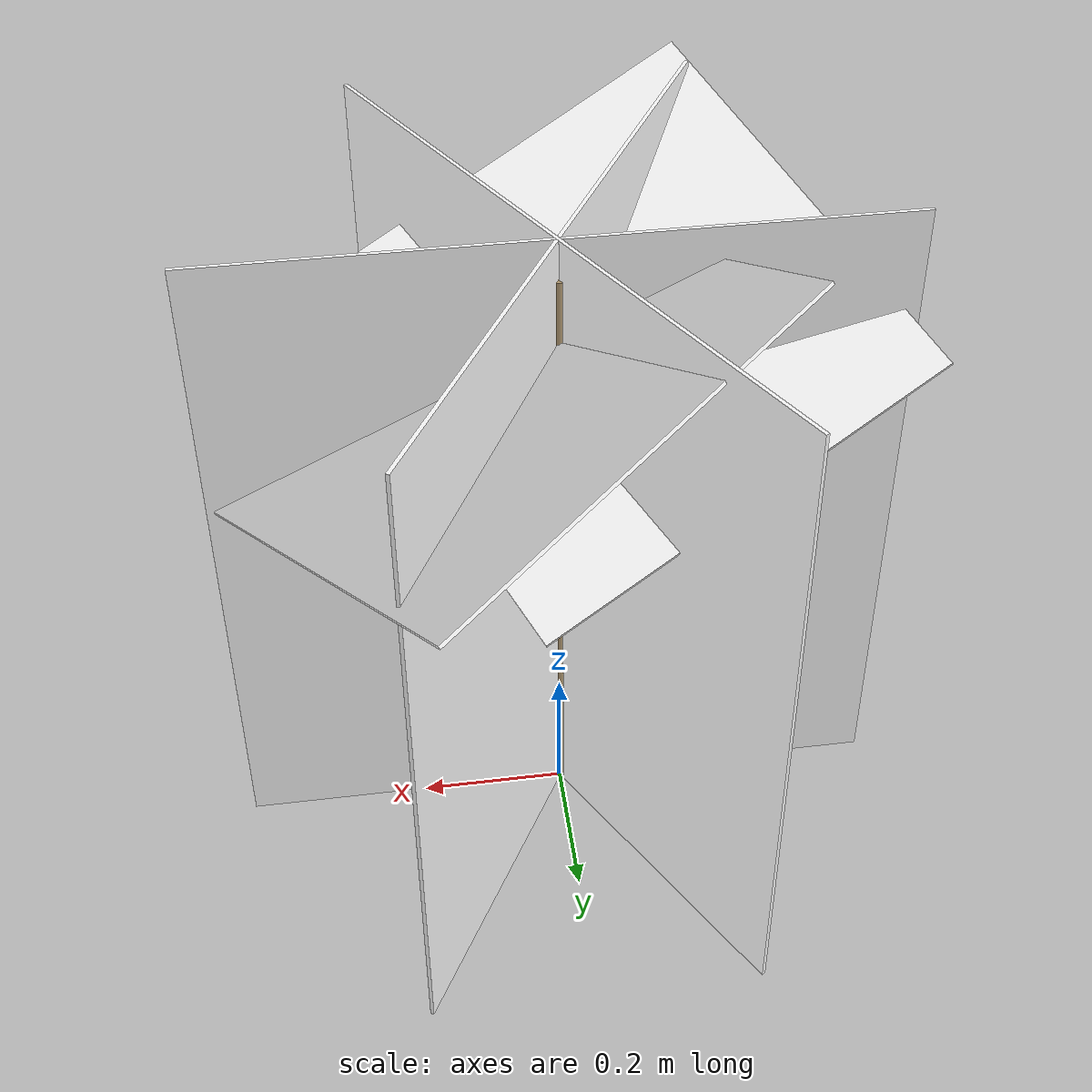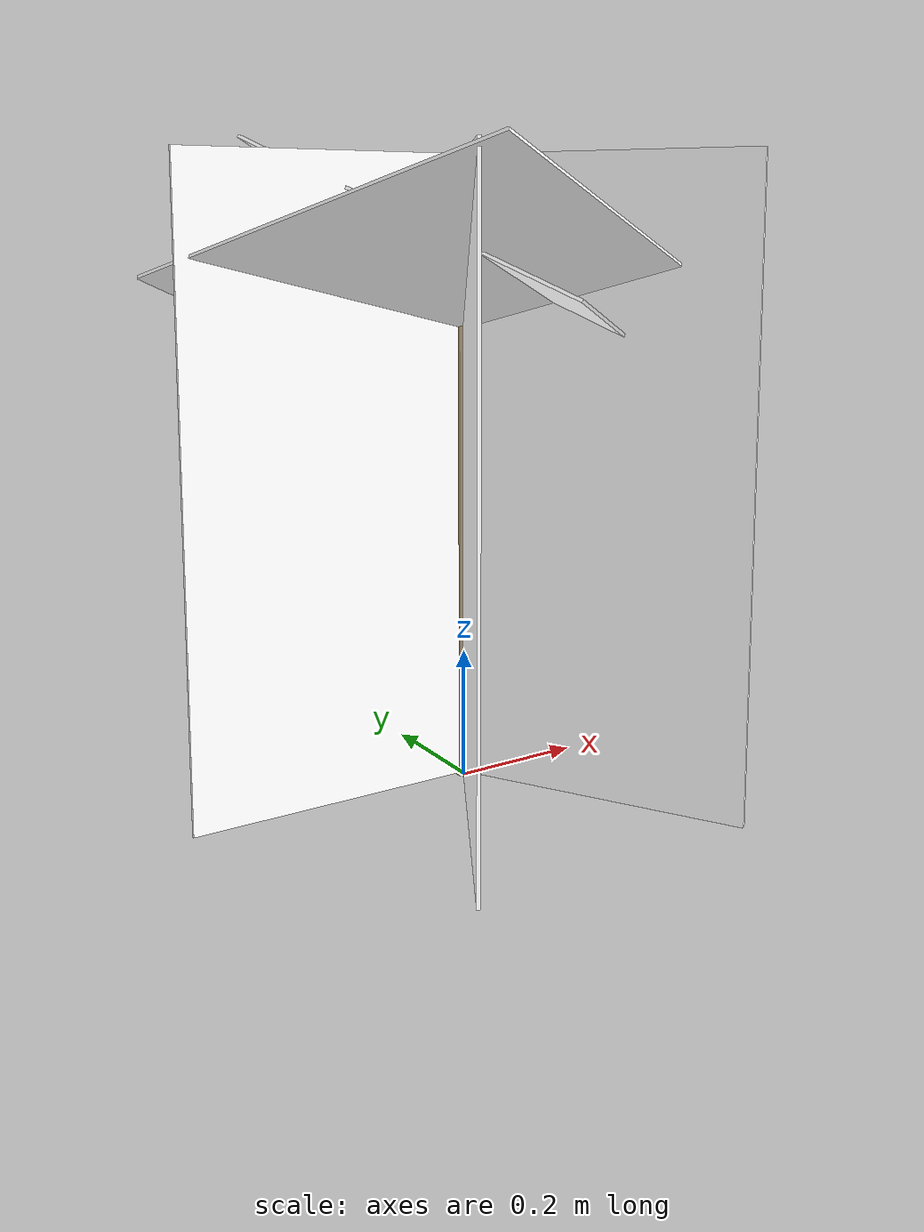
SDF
<?xml version="1.0" ?>
<sdf version="1.9">
  <model name="capsicum_plant">
    <static>true</static>

    <link name="plant_link">
      <pose>0 0 0 0 0 0</pose>

      <!-- Central Support Stake -->
      <visual name="support_stake">
        <pose>0 0 0.45 0 0 0</pose>
        <geometry><cylinder><radius>0.012</radius><length>0.9</length></cylinder></geometry>
        <material>
          <ambient>0.6 0.52 0.38 1</ambient>
          <diffuse>0.72 0.62 0.46 1</diffuse>
        </material>
      </visual>

      <!-- PHOTOREALISTIC TEXTURED CROSS-BILLBOARDS (3-Way Star)-->
      <!-- Plane 1: 0 degrees -->
      <visual name="foliage_plane_0deg">
        <pose>0 0 0.48 0 0 0</pose>
        <geometry>
          <box><size>0.9 0.005 0.95</size></box>
        </geometry>
        <material>
          <ambient>1.0 1.0 1.0 1.0</ambient>
          <diffuse>1.0 1.0 1.0 1.0</diffuse>
          <pbr>
            <metal>
              <albedo_map>model://capsicum_plant/materials/textures/capsicum_real.png</albedo_map>
              <roughness>0.5</roughness>
              <metalness>0.0</metalness>
            </metal>
          </pbr>
        </material>
      </visual>

      <!-- Plane 2: 60 degrees -->
      <visual name="foliage_plane_60deg">
        <pose>0 0 0.48 0 0 1.047</pose>
        <geometry>
          <box><size>0.9 0.005 0.95</size></box>
        </geometry>
        <material>
          <ambient>1.0 1.0 1.0 1.0</ambient>
          <diffuse>1.0 1.0 1.0 1.0</diffuse>
          <pbr>
            <metal>
              <albedo_map>model://capsicum_plant/materials/textures/capsicum_real.png</albedo_map>
              <roughness>0.5</roughness>
              <metalness>0.0</metalness>
            </metal>
          </pbr>
        </material>
      </visual>

      <!-- Plane 3: 120 degrees -->
      <visual name="foliage_plane_120deg">
        <pose>0 0 0.48 0 0 2.094</pose>
        <geometry>
          <box><size>0.9 0.005 0.95</size></box>
        </geometry>
        <material>
          <ambient>1.0 1.0 1.0 1.0</ambient>
          <diffuse>1.0 1.0 1.0 1.0</diffuse>
          <pbr>
            <metal>
              <albedo_map>model://capsicum_plant/materials/textures/capsicum_real.png</albedo_map>
              <roughness>0.5</roughness>
              <metalness>0.0</metalness>
            </metal>
          </pbr>
        </material>
      </visual>

      <!-- Top-Down Angled Canopy Quads (Optimized for Drone Aerial Camera) -->
      <visual name="aerial_canopy_quad_1">
        <pose>0.08 0.08 0.78 0.4 0.3 0.6</pose>
        <geometry><box><size>0.6 0.6 0.005</size></box></geometry>
        <material>
          <ambient>1.0 1.0 1.0 1.0</ambient>
          <diffuse>1.0 1.0 1.0 1.0</diffuse>
          <pbr>
            <metal>
              <albedo_map>model://capsicum_plant/materials/textures/capsicum_real.png</albedo_map>
              <roughness>0.5</roughness>
              <metalness>0.0</metalness>
            </metal>
          </pbr>
        </material>
      </visual>
      <visual name="aerial_canopy_quad_2">
        <pose>-0.08 -0.08 0.76 -0.4 -0.3 -1.1</pose>
        <geometry><box><size>0.6 0.6 0.005</size></box></geometry>
        <material>
          <ambient>1.0 1.0 1.0 1.0</ambient>
          <diffuse>1.0 1.0 1.0 1.0</diffuse>
          <pbr>
            <metal>
              <albedo_map>model://capsicum_plant/materials/textures/capsicum_real.png</albedo_map>
              <roughness>0.5</roughness>
              <metalness>0.0</metalness>
            </metal>
          </pbr>
        </material>
      </visual>

      <!-- Collision Volume -->
      <collision name="plant_collision">
        <pose>0 0 0.45 0 0 0</pose>
        <geometry><cylinder><radius>0.4</radius><length>0.9</length></cylinder></geometry>
      </collision>
    </link>
  </model>
</sdf>
